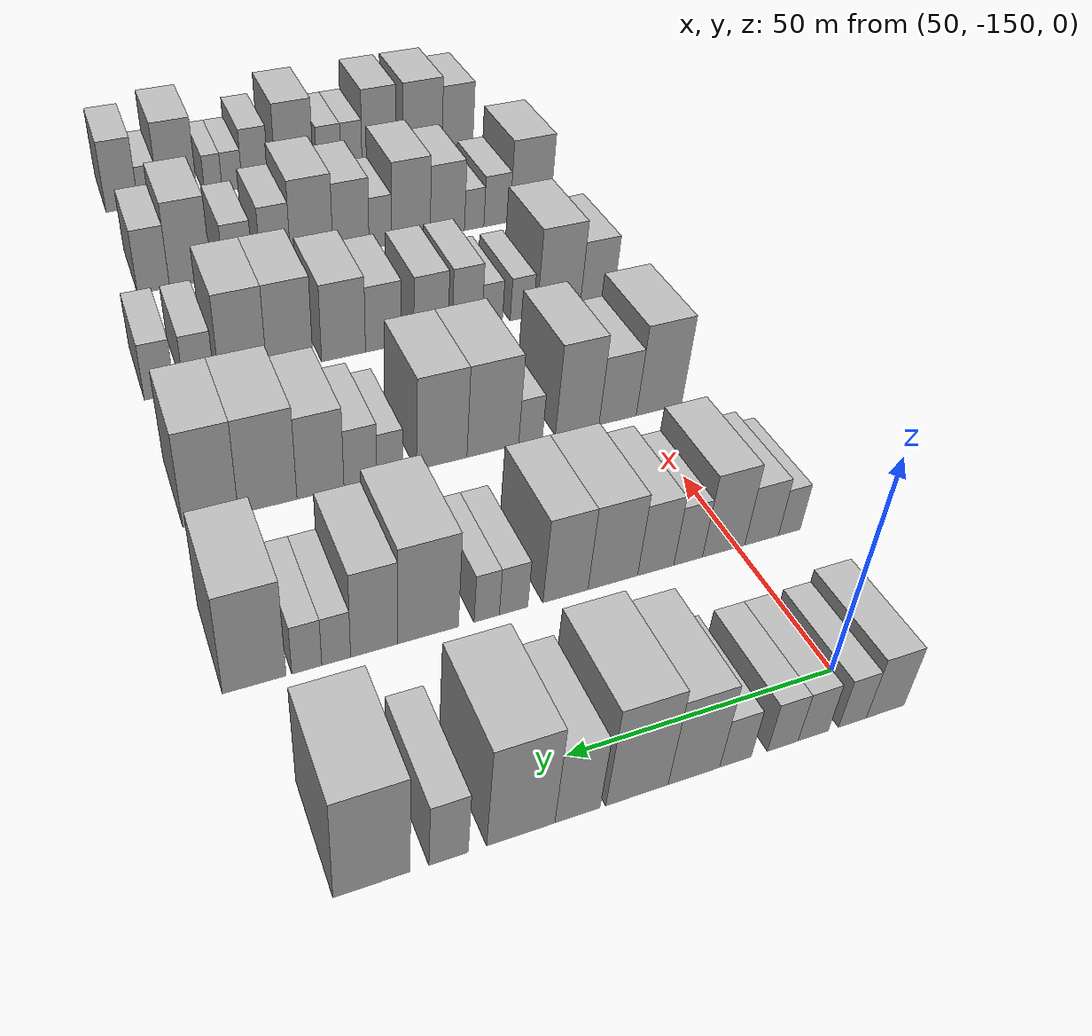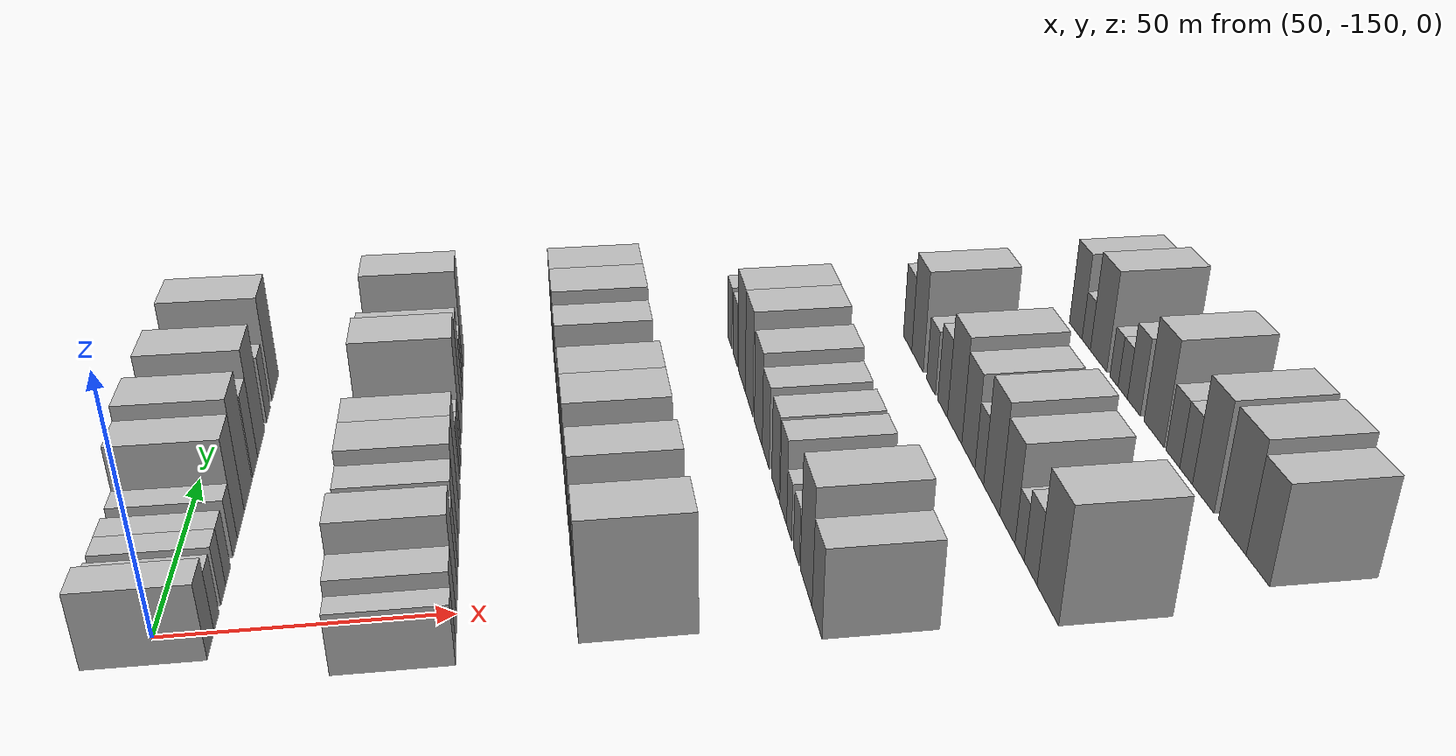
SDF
<sdf version="1.6">
 <world name="default">
  <model name="building_53">
   <static>1</static>
   <pose>50.0000 -153.5577 0 0.000000 0.000000 0.000000</pose>
   <link name="link">
    <pose>0 0 7.50 0 0 0</pose>
    <collision name="collision"><geometry><box><size>20.0000 7.4390 15.0000</size></box></geometry></collision>
    <visual name="visual">
     <cast_shadows>0</cast_shadows>
     <geometry><box><size>20.0000 7.4390 15.0000</size></box></geometry>
     <material>
      <script>
       <uri>model://HANNAS_wall/materials/scripts</uri>
       <uri>model://HANNAS_wall/materials/textures</uri>
       <name>vrc/HANNAS_wall</name>
      </script>
     </material>
    </visual>
   </link>
  </model>
  <model name="building_54">
   <static>1</static>
   <pose>50.0000 -147.1237 0 0.000000 0.000000 0.000000</pose>
   <link name="link">
    <pose>0 0 6.00 0 0 0</pose>
    <collision name="collision"><geometry><box><size>20.0000 5.4288 12.0000</size></box></geometry></collision>
    <visual name="visual">
     <cast_shadows>0</cast_shadows>
     <geometry><box><size>20.0000 5.4288 12.0000</size></box></geometry>
     <material>
      <script>
       <uri>model://HANNAS_wall/materials/scripts</uri>
       <uri>model://HANNAS_wall/materials/textures</uri>
       <name>vrc/HANNAS_wall</name>
      </script>
     </material>
    </visual>
   </link>
  </model>
  <model name="building_55">
   <static>1</static>
   <pose>50.0000 -139.5434 0 0.000000 0.000000 0.000000</pose>
   <link name="link">
    <pose>0 0 6.00 0 0 0</pose>
    <collision name="collision"><geometry><box><size>20.0000 5.7318 12.0000</size></box></geometry></collision>
    <visual name="visual">
     <cast_shadows>0</cast_shadows>
     <geometry><box><size>20.0000 5.7318 12.0000</size></box></geometry>
     <material>
      <script>
       <uri>model://HANNAS_wall/materials/scripts</uri>
       <uri>model://HANNAS_wall/materials/textures</uri>
       <name>vrc/HANNAS_wall</name>
      </script>
     </material>
    </visual>
   </link>
  </model>
  <model name="building_56">
   <static>1</static>
   <pose>50.0000 -133.7722 0 0.000000 0.000000 0.000000</pose>
   <link name="link">
    <pose>0 0 6.00 0 0 0</pose>
    <collision name="collision"><geometry><box><size>20.0000 5.8106 12.0000</size></box></geometry></collision>
    <visual name="visual">
     <cast_shadows>0</cast_shadows>
     <geometry><box><size>20.0000 5.8106 12.0000</size></box></geometry>
     <material>
      <script>
       <uri>model://HANNAS_wall/materials/scripts</uri>
       <uri>model://HANNAS_wall/materials/textures</uri>
       <name>vrc/HANNAS_wall</name>
      </script>
     </material>
    </visual>
   </link>
  </model>
  <model name="building_57">
   <static>1</static>
   <pose>50.0000 -124.9748 0 0.000000 0.000000 0.000000</pose>
   <link name="link">
    <pose>0 0 6.00 0 0 0</pose>
    <collision name="collision"><geometry><box><size>20.0000 5.7843 12.0000</size></box></geometry></collision>
    <visual name="visual">
     <cast_shadows>0</cast_shadows>
     <geometry><box><size>20.0000 5.7843 12.0000</size></box></geometry>
     <material>
      <script>
       <uri>model://HANNAS_wall/materials/scripts</uri>
       <uri>model://HANNAS_wall/materials/textures</uri>
       <name>vrc/HANNAS_wall</name>
      </script>
     </material>
    </visual>
   </link>
  </model>
  <model name="building_58">
   <static>1</static>
   <pose>50.0000 -117.4279 0 0.000000 0.000000 0.000000</pose>
   <link name="link">
    <pose>0 0 10.50 0 0 0</pose>
    <collision name="collision"><geometry><box><size>20.0000 9.3093 21.0000</size></box></geometry></collision>
    <visual name="visual">
     <cast_shadows>0</cast_shadows>
     <geometry><box><size>20.0000 9.3093 21.0000</size></box></geometry>
     <material>
      <script>
       <uri>model://HANNAS_wall/materials/scripts</uri>
       <uri>model://HANNAS_wall/materials/textures</uri>
       <name>vrc/HANNAS_wall</name>
      </script>
     </material>
    </visual>
   </link>
  </model>
  <model name="building_59">
   <static>1</static>
   <pose>50.0000 -107.3029 0 0.000000 0.000000 0.000000</pose>
   <link name="link">
    <pose>0 0 12.00 0 0 0</pose>
    <collision name="collision"><geometry><box><size>20.0000 10.9407 24.0000</size></box></geometry></collision>
    <visual name="visual">
     <cast_shadows>0</cast_shadows>
     <geometry><box><size>20.0000 10.9407 24.0000</size></box></geometry>
     <material>
      <script>
       <uri>model://HANNAS_wall/materials/scripts</uri>
       <uri>model://HANNAS_wall/materials/textures</uri>
       <name>vrc/HANNAS_wall</name>
      </script>
     </material>
    </visual>
   </link>
  </model>
  <model name="building_60">
   <static>1</static>
   <pose>50.0000 -96.9875 0 0.000000 0.000000 0.000000</pose>
   <link name="link">
    <pose>0 0 9.00 0 0 0</pose>
    <collision name="collision"><geometry><box><size>20.0000 7.6901 18.0000</size></box></geometry></collision>
    <visual name="visual">
     <cast_shadows>0</cast_shadows>
     <geometry><box><size>20.0000 7.6901 18.0000</size></box></geometry>
     <material>
      <script>
       <uri>model://HANNAS_wall/materials/scripts</uri>
       <uri>model://HANNAS_wall/materials/textures</uri>
       <name>vrc/HANNAS_wall</name>
      </script>
     </material>
    </visual>
   </link>
  </model>
  <model name="building_61">
   <static>1</static>
   <pose>50.0000 -87.4799 0 0.000000 0.000000 0.000000</pose>
   <link name="link">
    <pose>0 0 12.00 0 0 0</pose>
    <collision name="collision"><geometry><box><size>20.0000 11.3251 24.0000</size></box></geometry></collision>
    <visual name="visual">
     <cast_shadows>0</cast_shadows>
     <geometry><box><size>20.0000 11.3251 24.0000</size></box></geometry>
     <material>
      <script>
       <uri>model://HANNAS_wall/materials/scripts</uri>
       <uri>model://HANNAS_wall/materials/textures</uri>
       <name>vrc/HANNAS_wall</name>
      </script>
     </material>
    </visual>
   </link>
  </model>
  <model name="building_62">
   <static>1</static>
   <pose>50.0000 -75.6643 0 0.000000 0.000000 0.000000</pose>
   <link name="link">
    <pose>0 0 7.50 0 0 0</pose>
    <collision name="collision"><geometry><box><size>20.0000 6.3062 15.0000</size></box></geometry></collision>
    <visual name="visual">
     <cast_shadows>0</cast_shadows>
     <geometry><box><size>20.0000 6.3062 15.0000</size></box></geometry>
     <material>
      <script>
       <uri>model://HANNAS_wall/materials/scripts</uri>
       <uri>model://HANNAS_wall/materials/textures</uri>
       <name>vrc/HANNAS_wall</name>
      </script>
     </material>
    </visual>
   </link>
  </model>
  <model name="building_63">
   <static>1</static>
   <pose>50.0000 -63.5350 0 0.000000 0.000000 0.000000</pose>
   <link name="link">
    <pose>0 0 12.00 0 0 0</pose>
    <collision name="collision"><geometry><box><size>20.0000 11.9523 24.0000</size></box></geometry></collision>
    <visual name="visual">
     <cast_shadows>0</cast_shadows>
     <geometry><box><size>20.0000 11.9523 24.0000</size></box></geometry>
     <material>
      <script>
       <uri>model://HANNAS_wall/materials/scripts</uri>
       <uri>model://HANNAS_wall/materials/textures</uri>
       <name>vrc/HANNAS_wall</name>
      </script>
     </material>
    </visual>
   </link>
  </model>
  <model name="building_192">
   <static>1</static>
   <pose>90.0000 -161.4679 0 0.000000 0.000000 0.000000</pose>
   <link name="link">
    <pose>0 0 6.00 0 0 0</pose>
    <collision name="collision"><geometry><box><size>20.0000 4.8587 12.0000</size></box></geometry></collision>
    <visual name="visual">
     <cast_shadows>0</cast_shadows>
     <geometry><box><size>20.0000 4.8587 12.0000</size></box></geometry>
     <material>
      <script>
       <uri>model://HANNAS_wall/materials/scripts</uri>
       <uri>model://HANNAS_wall/materials/textures</uri>
       <name>vrc/HANNAS_wall</name>
      </script>
     </material>
    </visual>
   </link>
  </model>
  <model name="building_193">
   <static>1</static>
   <pose>90.0000 -155.3239 0 0.000000 0.000000 0.000000</pose>
   <link name="link">
    <pose>0 0 7.50 0 0 0</pose>
    <collision name="collision"><geometry><box><size>20.0000 7.4293 15.0000</size></box></geometry></collision>
    <visual name="visual">
     <cast_shadows>0</cast_shadows>
     <geometry><box><size>20.0000 7.4293 15.0000</size></box></geometry>
     <material>
      <script>
       <uri>model://HANNAS_wall/materials/scripts</uri>
       <uri>model://HANNAS_wall/materials/textures</uri>
       <name>vrc/HANNAS_wall</name>
      </script>
     </material>
    </visual>
   </link>
  </model>
  <model name="building_194">
   <static>1</static>
   <pose>90.0000 -147.0304 0 0.000000 0.000000 0.000000</pose>
   <link name="link">
    <pose>0 0 10.50 0 0 0</pose>
    <collision name="collision"><geometry><box><size>20.0000 9.1576 21.0000</size></box></geometry></collision>
    <visual name="visual">
     <cast_shadows>0</cast_shadows>
     <geometry><box><size>20.0000 9.1576 21.0000</size></box></geometry>
     <material>
      <script>
       <uri>model://HANNAS_wall/materials/scripts</uri>
       <uri>model://HANNAS_wall/materials/textures</uri>
       <name>vrc/HANNAS_wall</name>
      </script>
     </material>
    </visual>
   </link>
  </model>
  <model name="building_195">
   <static>1</static>
   <pose>90.0000 -139.3955 0 0.000000 0.000000 0.000000</pose>
   <link name="link">
    <pose>0 0 7.50 0 0 0</pose>
    <collision name="collision"><geometry><box><size>20.0000 6.1121 15.0000</size></box></geometry></collision>
    <visual name="visual">
     <cast_shadows>0</cast_shadows>
     <geometry><box><size>20.0000 6.1121 15.0000</size></box></geometry>
     <material>
      <script>
       <uri>model://HANNAS_wall/materials/scripts</uri>
       <uri>model://HANNAS_wall/materials/textures</uri>
       <name>vrc/HANNAS_wall</name>
      </script>
     </material>
    </visual>
   </link>
  </model>
  <model name="building_196">
   <static>1</static>
   <pose>90.0000 -132.5484 0 0.000000 0.000000 0.000000</pose>
   <link name="link">
    <pose>0 0 9.00 0 0 0</pose>
    <collision name="collision"><geometry><box><size>20.0000 7.5821 18.0000</size></box></geometry></collision>
    <visual name="visual">
     <cast_shadows>0</cast_shadows>
     <geometry><box><size>20.0000 7.5821 18.0000</size></box></geometry>
     <material>
      <script>
       <uri>model://HANNAS_wall/materials/scripts</uri>
       <uri>model://HANNAS_wall/materials/textures</uri>
       <name>vrc/HANNAS_wall</name>
      </script>
     </material>
    </visual>
   </link>
  </model>
  <model name="building_197">
   <static>1</static>
   <pose>90.0000 -123.6649 0 0.000000 0.000000 0.000000</pose>
   <link name="link">
    <pose>0 0 10.50 0 0 0</pose>
    <collision name="collision"><geometry><box><size>20.0000 10.1850 21.0000</size></box></geometry></collision>
    <visual name="visual">
     <cast_shadows>0</cast_shadows>
     <geometry><box><size>20.0000 10.1850 21.0000</size></box></geometry>
     <material>
      <script>
       <uri>model://HANNAS_wall/materials/scripts</uri>
       <uri>model://HANNAS_wall/materials/textures</uri>
       <name>vrc/HANNAS_wall</name>
      </script>
     </material>
    </visual>
   </link>
  </model>
  <model name="building_198">
   <static>1</static>
   <pose>90.0000 -114.0429 0 0.000000 0.000000 0.000000</pose>
   <link name="link">
    <pose>0 0 10.50 0 0 0</pose>
    <collision name="collision"><geometry><box><size>20.0000 9.0590 21.0000</size></box></geometry></collision>
    <visual name="visual">
     <cast_shadows>0</cast_shadows>
     <geometry><box><size>20.0000 9.0590 21.0000</size></box></geometry>
     <material>
      <script>
       <uri>model://HANNAS_wall/materials/scripts</uri>
       <uri>model://HANNAS_wall/materials/textures</uri>
       <name>vrc/HANNAS_wall</name>
      </script>
     </material>
    </visual>
   </link>
  </model>
  <model name="building_199">
   <static>1</static>
   <pose>90.0000 -103.7242 0 0.000000 0.000000 0.000000</pose>
   <link name="link">
    <pose>0 0 6.00 0 0 0</pose>
    <collision name="collision"><geometry><box><size>20.0000 5.5783 12.0000</size></box></geometry></collision>
    <visual name="visual">
     <cast_shadows>0</cast_shadows>
     <geometry><box><size>20.0000 5.5783 12.0000</size></box></geometry>
     <material>
      <script>
       <uri>model://HANNAS_wall/materials/scripts</uri>
       <uri>model://HANNAS_wall/materials/textures</uri>
       <name>vrc/HANNAS_wall</name>
      </script>
     </material>
    </visual>
   </link>
  </model>
  <model name="building_200">
   <static>1</static>
   <pose>90.0000 -98.4985 0 0.000000 0.000000 0.000000</pose>
   <link name="link">
    <pose>0 0 6.00 0 0 0</pose>
    <collision name="collision"><geometry><box><size>20.0000 4.8731 12.0000</size></box></geometry></collision>
    <visual name="visual">
     <cast_shadows>0</cast_shadows>
     <geometry><box><size>20.0000 4.8731 12.0000</size></box></geometry>
     <material>
      <script>
       <uri>model://HANNAS_wall/materials/scripts</uri>
       <uri>model://HANNAS_wall/materials/textures</uri>
       <name>vrc/HANNAS_wall</name>
      </script>
     </material>
    </visual>
   </link>
  </model>
  <model name="building_201">
   <static>1</static>
   <pose>90.0000 -87.3394 0 0.000000 0.000000 0.000000</pose>
   <link name="link">
    <pose>0 0 12.00 0 0 0</pose>
    <collision name="collision"><geometry><box><size>20.0000 11.4452 24.0000</size></box></geometry></collision>
    <visual name="visual">
     <cast_shadows>0</cast_shadows>
     <geometry><box><size>20.0000 11.4452 24.0000</size></box></geometry>
     <material>
      <script>
       <uri>model://HANNAS_wall/materials/scripts</uri>
       <uri>model://HANNAS_wall/materials/textures</uri>
       <name>vrc/HANNAS_wall</name>
      </script>
     </material>
    </visual>
   </link>
  </model>
  <model name="building_202">
   <static>1</static>
   <pose>90.0000 -77.2960 0 0.000000 0.000000 0.000000</pose>
   <link name="link">
    <pose>0 0 10.50 0 0 0</pose>
    <collision name="collision"><geometry><box><size>20.0000 8.6415 21.0000</size></box></geometry></collision>
    <visual name="visual">
     <cast_shadows>0</cast_shadows>
     <geometry><box><size>20.0000 8.6415 21.0000</size></box></geometry>
     <material>
      <script>
       <uri>model://HANNAS_wall/materials/scripts</uri>
       <uri>model://HANNAS_wall/materials/textures</uri>
       <name>vrc/HANNAS_wall</name>
      </script>
     </material>
    </visual>
   </link>
  </model>
  <model name="building_203">
   <static>1</static>
   <pose>90.0000 -70.3737 0 0.000000 0.000000 0.000000</pose>
   <link name="link">
    <pose>0 0 6.00 0 0 0</pose>
    <collision name="collision"><geometry><box><size>20.0000 5.2032 12.0000</size></box></geometry></collision>
    <visual name="visual">
     <cast_shadows>0</cast_shadows>
     <geometry><box><size>20.0000 5.2032 12.0000</size></box></geometry>
     <material>
      <script>
       <uri>model://HANNAS_wall/materials/scripts</uri>
       <uri>model://HANNAS_wall/materials/textures</uri>
       <name>vrc/HANNAS_wall</name>
      </script>
     </material>
    </visual>
   </link>
  </model>
  <model name="building_204">
   <static>1</static>
   <pose>90.0000 -65.0941 0 0.000000 0.000000 0.000000</pose>
   <link name="link">
    <pose>0 0 6.00 0 0 0</pose>
    <collision name="collision"><geometry><box><size>20.0000 5.3561 12.0000</size></box></geometry></collision>
    <visual name="visual">
     <cast_shadows>0</cast_shadows>
     <geometry><box><size>20.0000 5.3561 12.0000</size></box></geometry>
     <material>
      <script>
       <uri>model://HANNAS_wall/materials/scripts</uri>
       <uri>model://HANNAS_wall/materials/textures</uri>
       <name>vrc/HANNAS_wall</name>
      </script>
     </material>
    </visual>
   </link>
  </model>
  <model name="building_205">
   <static>1</static>
   <pose>90.0000 -55.8504 0 0.000000 0.000000 0.000000</pose>
   <link name="link">
    <pose>0 0 12.00 0 0 0</pose>
    <collision name="collision"><geometry><box><size>20.0000 11.1311 24.0000</size></box></geometry></collision>
    <visual name="visual">
     <cast_shadows>0</cast_shadows>
     <geometry><box><size>20.0000 11.1311 24.0000</size></box></geometry>
     <material>
      <script>
       <uri>model://HANNAS_wall/materials/scripts</uri>
       <uri>model://HANNAS_wall/materials/textures</uri>
       <name>vrc/HANNAS_wall</name>
      </script>
     </material>
    </visual>
   </link>
  </model>
  <model name="building_327">
   <static>1</static>
   <pose>130.0000 -155.2935 0 0.000000 0.000000 0.000000</pose>
   <link name="link">
    <pose>0 0 12.00 0 0 0</pose>
    <collision name="collision"><geometry><box><size>20.0000 10.9934 24.0000</size></box></geometry></collision>
    <visual name="visual">
     <cast_shadows>0</cast_shadows>
     <geometry><box><size>20.0000 10.9934 24.0000</size></box></geometry>
     <material>
      <script>
       <uri>model://HANNAS_wall/materials/scripts</uri>
       <uri>model://HANNAS_wall/materials/textures</uri>
       <name>vrc/HANNAS_wall</name>
      </script>
     </material>
    </visual>
   </link>
  </model>
  <model name="building_328">
   <static>1</static>
   <pose>130.0000 -145.3778 0 0.000000 0.000000 0.000000</pose>
   <link name="link">
    <pose>0 0 9.00 0 0 0</pose>
    <collision name="collision"><geometry><box><size>20.0000 8.8381 18.0000</size></box></geometry></collision>
    <visual name="visual">
     <cast_shadows>0</cast_shadows>
     <geometry><box><size>20.0000 8.8381 18.0000</size></box></geometry>
     <material>
      <script>
       <uri>model://HANNAS_wall/materials/scripts</uri>
       <uri>model://HANNAS_wall/materials/textures</uri>
       <name>vrc/HANNAS_wall</name>
      </script>
     </material>
    </visual>
   </link>
  </model>
  <model name="building_329">
   <static>1</static>
   <pose>130.0000 -135.8644 0 0.000000 0.000000 0.000000</pose>
   <link name="link">
    <pose>0 0 12.00 0 0 0</pose>
    <collision name="collision"><geometry><box><size>20.0000 10.1886 24.0000</size></box></geometry></collision>
    <visual name="visual">
     <cast_shadows>0</cast_shadows>
     <geometry><box><size>20.0000 10.1886 24.0000</size></box></geometry>
     <material>
      <script>
       <uri>model://HANNAS_wall/materials/scripts</uri>
       <uri>model://HANNAS_wall/materials/textures</uri>
       <name>vrc/HANNAS_wall</name>
      </script>
     </material>
    </visual>
   </link>
  </model>
  <model name="building_330">
   <static>1</static>
   <pose>130.0000 -125.0587 0 0.000000 0.000000 0.000000</pose>
   <link name="link">
    <pose>0 0 6.00 0 0 0</pose>
    <collision name="collision"><geometry><box><size>20.0000 5.4227 12.0000</size></box></geometry></collision>
    <visual name="visual">
     <cast_shadows>0</cast_shadows>
     <geometry><box><size>20.0000 5.4227 12.0000</size></box></geometry>
     <material>
      <script>
       <uri>model://HANNAS_wall/materials/scripts</uri>
       <uri>model://HANNAS_wall/materials/textures</uri>
       <name>vrc/HANNAS_wall</name>
      </script>
     </material>
    </visual>
   </link>
  </model>
  <model name="building_331">
   <static>1</static>
   <pose>130.0000 -116.5566 0 0.000000 0.000000 0.000000</pose>
   <link name="link">
    <pose>0 0 12.00 0 0 0</pose>
    <collision name="collision"><geometry><box><size>20.0000 11.5816 24.0000</size></box></geometry></collision>
    <visual name="visual">
     <cast_shadows>0</cast_shadows>
     <geometry><box><size>20.0000 11.5816 24.0000</size></box></geometry>
     <material>
      <script>
       <uri>model://HANNAS_wall/materials/scripts</uri>
       <uri>model://HANNAS_wall/materials/textures</uri>
       <name>vrc/HANNAS_wall</name>
      </script>
     </material>
    </visual>
   </link>
  </model>
  <model name="building_332">
   <static>1</static>
   <pose>130.0000 -105.2314 0 0.000000 0.000000 0.000000</pose>
   <link name="link">
    <pose>0 0 12.00 0 0 0</pose>
    <collision name="collision"><geometry><box><size>20.0000 11.0688 24.0000</size></box></geometry></collision>
    <visual name="visual">
     <cast_shadows>0</cast_shadows>
     <geometry><box><size>20.0000 11.0688 24.0000</size></box></geometry>
     <material>
      <script>
       <uri>model://HANNAS_wall/materials/scripts</uri>
       <uri>model://HANNAS_wall/materials/textures</uri>
       <name>vrc/HANNAS_wall</name>
      </script>
     </material>
    </visual>
   </link>
  </model>
  <model name="building_333">
   <static>1</static>
   <pose>130.0000 -93.9597 0 0.000000 0.000000 0.000000</pose>
   <link name="link">
    <pose>0 0 6.00 0 0 0</pose>
    <collision name="collision"><geometry><box><size>20.0000 5.4746 12.0000</size></box></geometry></collision>
    <visual name="visual">
     <cast_shadows>0</cast_shadows>
     <geometry><box><size>20.0000 5.4746 12.0000</size></box></geometry>
     <material>
      <script>
       <uri>model://HANNAS_wall/materials/scripts</uri>
       <uri>model://HANNAS_wall/materials/textures</uri>
       <name>vrc/HANNAS_wall</name>
      </script>
     </material>
    </visual>
   </link>
  </model>
  <model name="building_334">
   <static>1</static>
   <pose>130.0000 -87.7505 0 0.000000 0.000000 0.000000</pose>
   <link name="link">
    <pose>0 0 7.50 0 0 0</pose>
    <collision name="collision"><geometry><box><size>20.0000 6.9438 15.0000</size></box></geometry></collision>
    <visual name="visual">
     <cast_shadows>0</cast_shadows>
     <geometry><box><size>20.0000 6.9438 15.0000</size></box></geometry>
     <material>
      <script>
       <uri>model://HANNAS_wall/materials/scripts</uri>
       <uri>model://HANNAS_wall/materials/textures</uri>
       <name>vrc/HANNAS_wall</name>
      </script>
     </material>
    </visual>
   </link>
  </model>
  <model name="building_335">
   <static>1</static>
   <pose>130.0000 -79.4132 0 0.000000 0.000000 0.000000</pose>
   <link name="link">
    <pose>0 0 10.50 0 0 0</pose>
    <collision name="collision"><geometry><box><size>20.0000 9.7308 21.0000</size></box></geometry></collision>
    <visual name="visual">
     <cast_shadows>0</cast_shadows>
     <geometry><box><size>20.0000 9.7308 21.0000</size></box></geometry>
     <material>
      <script>
       <uri>model://HANNAS_wall/materials/scripts</uri>
       <uri>model://HANNAS_wall/materials/textures</uri>
       <name>vrc/HANNAS_wall</name>
      </script>
     </material>
    </visual>
   </link>
  </model>
  <model name="building_336">
   <static>1</static>
   <pose>130.0000 -68.6014 0 0.000000 0.000000 0.000000</pose>
   <link name="link">
    <pose>0 0 12.00 0 0 0</pose>
    <collision name="collision"><geometry><box><size>20.0000 11.8928 24.0000</size></box></geometry></collision>
    <visual name="visual">
     <cast_shadows>0</cast_shadows>
     <geometry><box><size>20.0000 11.8928 24.0000</size></box></geometry>
     <material>
      <script>
       <uri>model://HANNAS_wall/materials/scripts</uri>
       <uri>model://HANNAS_wall/materials/textures</uri>
       <name>vrc/HANNAS_wall</name>
      </script>
     </material>
    </visual>
   </link>
  </model>
  <model name="building_337">
   <static>1</static>
   <pose>130.0000 -57.1576 0 0.000000 0.000000 0.000000</pose>
   <link name="link">
    <pose>0 0 12.00 0 0 0</pose>
    <collision name="collision"><geometry><box><size>20.0000 10.9949 24.0000</size></box></geometry></collision>
    <visual name="visual">
     <cast_shadows>0</cast_shadows>
     <geometry><box><size>20.0000 10.9949 24.0000</size></box></geometry>
     <material>
      <script>
       <uri>model://HANNAS_wall/materials/scripts</uri>
       <uri>model://HANNAS_wall/materials/textures</uri>
       <name>vrc/HANNAS_wall</name>
      </script>
     </material>
    </visual>
   </link>
  </model>
  <model name="building_448">
   <static>1</static>
   <pose>170.0000 -160.5381 0 0.000000 0.000000 0.000000</pose>
   <link name="link">
    <pose>0 0 9.00 0 0 0</pose>
    <collision name="collision"><geometry><box><size>20.0000 8.9201 18.0000</size></box></geometry></collision>
    <visual name="visual">
     <cast_shadows>0</cast_shadows>
     <geometry><box><size>20.0000 8.9201 18.0000</size></box></geometry>
     <material>
      <script>
       <uri>model://HANNAS_wall/materials/scripts</uri>
       <uri>model://HANNAS_wall/materials/textures</uri>
       <name>vrc/HANNAS_wall</name>
      </script>
     </material>
    </visual>
   </link>
  </model>
  <model name="building_449">
   <static>1</static>
   <pose>170.0000 -150.4139 0 0.000000 0.000000 0.000000</pose>
   <link name="link">
    <pose>0 0 12.00 0 0 0</pose>
    <collision name="collision"><geometry><box><size>20.0000 11.3284 24.0000</size></box></geometry></collision>
    <visual name="visual">
     <cast_shadows>0</cast_shadows>
     <geometry><box><size>20.0000 11.3284 24.0000</size></box></geometry>
     <material>
      <script>
       <uri>model://HANNAS_wall/materials/scripts</uri>
       <uri>model://HANNAS_wall/materials/textures</uri>
       <name>vrc/HANNAS_wall</name>
      </script>
     </material>
    </visual>
   </link>
  </model>
  <model name="building_450">
   <static>1</static>
   <pose>170.0000 -140.7817 0 0.000000 0.000000 0.000000</pose>
   <link name="link">
    <pose>0 0 6.00 0 0 0</pose>
    <collision name="collision"><geometry><box><size>20.0000 5.9359 12.0000</size></box></geometry></collision>
    <visual name="visual">
     <cast_shadows>0</cast_shadows>
     <geometry><box><size>20.0000 5.9359 12.0000</size></box></geometry>
     <material>
      <script>
       <uri>model://HANNAS_wall/materials/scripts</uri>
       <uri>model://HANNAS_wall/materials/textures</uri>
       <name>vrc/HANNAS_wall</name>
      </script>
     </material>
    </visual>
   </link>
  </model>
  <model name="building_451">
   <static>1</static>
   <pose>170.0000 -133.2052 0 0.000000 0.000000 0.000000</pose>
   <link name="link">
    <pose>0 0 6.00 0 0 0</pose>
    <collision name="collision"><geometry><box><size>20.0000 5.2170 12.0000</size></box></geometry></collision>
    <visual name="visual">
     <cast_shadows>0</cast_shadows>
     <geometry><box><size>20.0000 5.2170 12.0000</size></box></geometry>
     <material>
      <script>
       <uri>model://HANNAS_wall/materials/scripts</uri>
       <uri>model://HANNAS_wall/materials/textures</uri>
       <name>vrc/HANNAS_wall</name>
      </script>
     </material>
    </visual>
   </link>
  </model>
  <model name="building_452">
   <static>1</static>
   <pose>170.0000 -126.8496 0 0.000000 0.000000 0.000000</pose>
   <link name="link">
    <pose>0 0 9.00 0 0 0</pose>
    <collision name="collision"><geometry><box><size>20.0000 7.4944 18.0000</size></box></geometry></collision>
    <visual name="visual">
     <cast_shadows>0</cast_shadows>
     <geometry><box><size>20.0000 7.4944 18.0000</size></box></geometry>
     <material>
      <script>
       <uri>model://HANNAS_wall/materials/scripts</uri>
       <uri>model://HANNAS_wall/materials/textures</uri>
       <name>vrc/HANNAS_wall</name>
      </script>
     </material>
    </visual>
   </link>
  </model>
  <model name="building_453">
   <static>1</static>
   <pose>170.0000 -117.8507 0 0.000000 0.000000 0.000000</pose>
   <link name="link">
    <pose>0 0 9.00 0 0 0</pose>
    <collision name="collision"><geometry><box><size>20.0000 8.5032 18.0000</size></box></geometry></collision>
    <visual name="visual">
     <cast_shadows>0</cast_shadows>
     <geometry><box><size>20.0000 8.5032 18.0000</size></box></geometry>
     <material>
      <script>
       <uri>model://HANNAS_wall/materials/scripts</uri>
       <uri>model://HANNAS_wall/materials/textures</uri>
       <name>vrc/HANNAS_wall</name>
      </script>
     </material>
    </visual>
   </link>
  </model>
  <model name="building_454">
   <static>1</static>
   <pose>170.0000 -106.2595 0 0.000000 0.000000 0.000000</pose>
   <link name="link">
    <pose>0 0 9.00 0 0 0</pose>
    <collision name="collision"><geometry><box><size>20.0000 8.6792 18.0000</size></box></geometry></collision>
    <visual name="visual">
     <cast_shadows>0</cast_shadows>
     <geometry><box><size>20.0000 8.6792 18.0000</size></box></geometry>
     <material>
      <script>
       <uri>model://HANNAS_wall/materials/scripts</uri>
       <uri>model://HANNAS_wall/materials/textures</uri>
       <name>vrc/HANNAS_wall</name>
      </script>
     </material>
    </visual>
   </link>
  </model>
  <model name="building_455">
   <static>1</static>
   <pose>170.0000 -96.7025 0 0.000000 0.000000 0.000000</pose>
   <link name="link">
    <pose>0 0 10.50 0 0 0</pose>
    <collision name="collision"><geometry><box><size>20.0000 10.4347 21.0000</size></box></geometry></collision>
    <visual name="visual">
     <cast_shadows>0</cast_shadows>
     <geometry><box><size>20.0000 10.4347 21.0000</size></box></geometry>
     <material>
      <script>
       <uri>model://HANNAS_wall/materials/scripts</uri>
       <uri>model://HANNAS_wall/materials/textures</uri>
       <name>vrc/HANNAS_wall</name>
      </script>
     </material>
    </visual>
   </link>
  </model>
  <model name="building_456">
   <static>1</static>
   <pose>170.0000 -84.1325 0 0.000000 0.000000 0.000000</pose>
   <link name="link">
    <pose>0 0 12.00 0 0 0</pose>
    <collision name="collision"><geometry><box><size>20.0000 10.7053 24.0000</size></box></geometry></collision>
    <visual name="visual">
     <cast_shadows>0</cast_shadows>
     <geometry><box><size>20.0000 10.7053 24.0000</size></box></geometry>
     <material>
      <script>
       <uri>model://HANNAS_wall/materials/scripts</uri>
       <uri>model://HANNAS_wall/materials/textures</uri>
       <name>vrc/HANNAS_wall</name>
      </script>
     </material>
    </visual>
   </link>
  </model>
  <model name="building_457">
   <static>1</static>
   <pose>170.0000 -73.3714 0 0.000000 0.000000 0.000000</pose>
   <link name="link">
    <pose>0 0 12.00 0 0 0</pose>
    <collision name="collision"><geometry><box><size>20.0000 10.8168 24.0000</size></box></geometry></collision>
    <visual name="visual">
     <cast_shadows>0</cast_shadows>
     <geometry><box><size>20.0000 10.8168 24.0000</size></box></geometry>
     <material>
      <script>
       <uri>model://HANNAS_wall/materials/scripts</uri>
       <uri>model://HANNAS_wall/materials/textures</uri>
       <name>vrc/HANNAS_wall</name>
      </script>
     </material>
    </visual>
   </link>
  </model>
  <model name="building_458">
   <static>1</static>
   <pose>170.0000 -63.5251 0 0.000000 0.000000 0.000000</pose>
   <link name="link">
    <pose>0 0 7.50 0 0 0</pose>
    <collision name="collision"><geometry><box><size>20.0000 6.8759 15.0000</size></box></geometry></collision>
    <visual name="visual">
     <cast_shadows>0</cast_shadows>
     <geometry><box><size>20.0000 6.8759 15.0000</size></box></geometry>
     <material>
      <script>
       <uri>model://HANNAS_wall/materials/scripts</uri>
       <uri>model://HANNAS_wall/materials/textures</uri>
       <name>vrc/HANNAS_wall</name>
      </script>
     </material>
    </visual>
   </link>
  </model>
  <model name="building_459">
   <static>1</static>
   <pose>170.0000 -54.7074 0 0.000000 0.000000 0.000000</pose>
   <link name="link">
    <pose>0 0 7.50 0 0 0</pose>
    <collision name="collision"><geometry><box><size>20.0000 6.7594 15.0000</size></box></geometry></collision>
    <visual name="visual">
     <cast_shadows>0</cast_shadows>
     <geometry><box><size>20.0000 6.7594 15.0000</size></box></geometry>
     <material>
      <script>
       <uri>model://HANNAS_wall/materials/scripts</uri>
       <uri>model://HANNAS_wall/materials/textures</uri>
       <name>vrc/HANNAS_wall</name>
      </script>
     </material>
    </visual>
   </link>
  </model>
  <model name="building_576">
   <static>1</static>
   <pose>210.0000 -160.8794 0 0.000000 0.000000 0.000000</pose>
   <link name="link">
    <pose>0 0 12.00 0 0 0</pose>
    <collision name="collision"><geometry><box><size>20.0000 11.6270 24.0000</size></box></geometry></collision>
    <visual name="visual">
     <cast_shadows>0</cast_shadows>
     <geometry><box><size>20.0000 11.6270 24.0000</size></box></geometry>
     <material>
      <script>
       <uri>model://HANNAS_wall/materials/scripts</uri>
       <uri>model://HANNAS_wall/materials/textures</uri>
       <name>vrc/HANNAS_wall</name>
      </script>
     </material>
    </visual>
   </link>
  </model>
  <model name="building_577">
   <static>1</static>
   <pose>210.0000 -151.3791 0 0.000000 0.000000 0.000000</pose>
   <link name="link">
    <pose>0 0 7.50 0 0 0</pose>
    <collision name="collision"><geometry><box><size>20.0000 7.3735 15.0000</size></box></geometry></collision>
    <visual name="visual">
     <cast_shadows>0</cast_shadows>
     <geometry><box><size>20.0000 7.3735 15.0000</size></box></geometry>
     <material>
      <script>
       <uri>model://HANNAS_wall/materials/scripts</uri>
       <uri>model://HANNAS_wall/materials/textures</uri>
       <name>vrc/HANNAS_wall</name>
      </script>
     </material>
    </visual>
   </link>
  </model>
  <model name="building_578">
   <static>1</static>
   <pose>210.0000 -144.9520 0 0.000000 0.000000 0.000000</pose>
   <link name="link">
    <pose>0 0 6.00 0 0 0</pose>
    <collision name="collision"><geometry><box><size>20.0000 5.4808 12.0000</size></box></geometry></collision>
    <visual name="visual">
     <cast_shadows>0</cast_shadows>
     <geometry><box><size>20.0000 5.4808 12.0000</size></box></geometry>
     <material>
      <script>
       <uri>model://HANNAS_wall/materials/scripts</uri>
       <uri>model://HANNAS_wall/materials/textures</uri>
       <name>vrc/HANNAS_wall</name>
      </script>
     </material>
    </visual>
   </link>
  </model>
  <model name="building_579">
   <static>1</static>
   <pose>210.0000 -137.4248 0 0.000000 0.000000 0.000000</pose>
   <link name="link">
    <pose>0 0 10.50 0 0 0</pose>
    <collision name="collision"><geometry><box><size>20.0000 9.5737 21.0000</size></box></geometry></collision>
    <visual name="visual">
     <cast_shadows>0</cast_shadows>
     <geometry><box><size>20.0000 9.5737 21.0000</size></box></geometry>
     <material>
      <script>
       <uri>model://HANNAS_wall/materials/scripts</uri>
       <uri>model://HANNAS_wall/materials/textures</uri>
       <name>vrc/HANNAS_wall</name>
      </script>
     </material>
    </visual>
   </link>
  </model>
  <model name="building_580">
   <static>1</static>
   <pose>210.0000 -127.3440 0 0.000000 0.000000 0.000000</pose>
   <link name="link">
    <pose>0 0 12.00 0 0 0</pose>
    <collision name="collision"><geometry><box><size>20.0000 10.5878 24.0000</size></box></geometry></collision>
    <visual name="visual">
     <cast_shadows>0</cast_shadows>
     <geometry><box><size>20.0000 10.5878 24.0000</size></box></geometry>
     <material>
      <script>
       <uri>model://HANNAS_wall/materials/scripts</uri>
       <uri>model://HANNAS_wall/materials/textures</uri>
       <name>vrc/HANNAS_wall</name>
      </script>
     </material>
    </visual>
   </link>
  </model>
  <model name="building_581">
   <static>1</static>
   <pose>210.0000 -119.0221 0 0.000000 0.000000 0.000000</pose>
   <link name="link">
    <pose>0 0 7.50 0 0 0</pose>
    <collision name="collision"><geometry><box><size>20.0000 6.0561 15.0000</size></box></geometry></collision>
    <visual name="visual">
     <cast_shadows>0</cast_shadows>
     <geometry><box><size>20.0000 6.0561 15.0000</size></box></geometry>
     <material>
      <script>
       <uri>model://HANNAS_wall/materials/scripts</uri>
       <uri>model://HANNAS_wall/materials/textures</uri>
       <name>vrc/HANNAS_wall</name>
      </script>
     </material>
    </visual>
   </link>
  </model>
  <model name="building_582">
   <static>1</static>
   <pose>210.0000 -111.1900 0 0.000000 0.000000 0.000000</pose>
   <link name="link">
    <pose>0 0 10.50 0 0 0</pose>
    <collision name="collision"><geometry><box><size>20.0000 9.6080 21.0000</size></box></geometry></collision>
    <visual name="visual">
     <cast_shadows>0</cast_shadows>
     <geometry><box><size>20.0000 9.6080 21.0000</size></box></geometry>
     <material>
      <script>
       <uri>model://HANNAS_wall/materials/scripts</uri>
       <uri>model://HANNAS_wall/materials/textures</uri>
       <name>vrc/HANNAS_wall</name>
      </script>
     </material>
    </visual>
   </link>
  </model>
  <model name="building_583">
   <static>1</static>
   <pose>210.0000 -100.8554 0 0.000000 0.000000 0.000000</pose>
   <link name="link">
    <pose>0 0 12.00 0 0 0</pose>
    <collision name="collision"><geometry><box><size>20.0000 11.0613 24.0000</size></box></geometry></collision>
    <visual name="visual">
     <cast_shadows>0</cast_shadows>
     <geometry><box><size>20.0000 11.0613 24.0000</size></box></geometry>
     <material>
      <script>
       <uri>model://HANNAS_wall/materials/scripts</uri>
       <uri>model://HANNAS_wall/materials/textures</uri>
       <name>vrc/HANNAS_wall</name>
      </script>
     </material>
    </visual>
   </link>
  </model>
  <model name="building_584">
   <static>1</static>
   <pose>210.0000 -91.4302 0 0.000000 0.000000 0.000000</pose>
   <link name="link">
    <pose>0 0 9.00 0 0 0</pose>
    <collision name="collision"><geometry><box><size>20.0000 7.7893 18.0000</size></box></geometry></collision>
    <visual name="visual">
     <cast_shadows>0</cast_shadows>
     <geometry><box><size>20.0000 7.7893 18.0000</size></box></geometry>
     <material>
      <script>
       <uri>model://HANNAS_wall/materials/scripts</uri>
       <uri>model://HANNAS_wall/materials/textures</uri>
       <name>vrc/HANNAS_wall</name>
      </script>
     </material>
    </visual>
   </link>
  </model>
  <model name="building_585">
   <static>1</static>
   <pose>210.0000 -81.8159 0 0.000000 0.000000 0.000000</pose>
   <link name="link">
    <pose>0 0 7.50 0 0 0</pose>
    <collision name="collision"><geometry><box><size>20.0000 7.4393 15.0000</size></box></geometry></collision>
    <visual name="visual">
     <cast_shadows>0</cast_shadows>
     <geometry><box><size>20.0000 7.4393 15.0000</size></box></geometry>
     <material>
      <script>
       <uri>model://HANNAS_wall/materials/scripts</uri>
       <uri>model://HANNAS_wall/materials/textures</uri>
       <name>vrc/HANNAS_wall</name>
      </script>
     </material>
    </visual>
   </link>
  </model>
  <model name="building_586">
   <static>1</static>
   <pose>210.0000 -69.8882 0 0.000000 0.000000 0.000000</pose>
   <link name="link">
    <pose>0 0 12.00 0 0 0</pose>
    <collision name="collision"><geometry><box><size>20.0000 10.4160 24.0000</size></box></geometry></collision>
    <visual name="visual">
     <cast_shadows>0</cast_shadows>
     <geometry><box><size>20.0000 10.4160 24.0000</size></box></geometry>
     <material>
      <script>
       <uri>model://HANNAS_wall/materials/scripts</uri>
       <uri>model://HANNAS_wall/materials/textures</uri>
       <name>vrc/HANNAS_wall</name>
      </script>
     </material>
    </visual>
   </link>
  </model>
  <model name="building_587">
   <static>1</static>
   <pose>210.0000 -60.7313 0 0.000000 0.000000 0.000000</pose>
   <link name="link">
    <pose>0 0 9.00 0 0 0</pose>
    <collision name="collision"><geometry><box><size>20.0000 7.8979 18.0000</size></box></geometry></collision>
    <visual name="visual">
     <cast_shadows>0</cast_shadows>
     <geometry><box><size>20.0000 7.8979 18.0000</size></box></geometry>
     <material>
      <script>
       <uri>model://HANNAS_wall/materials/scripts</uri>
       <uri>model://HANNAS_wall/materials/textures</uri>
       <name>vrc/HANNAS_wall</name>
      </script>
     </material>
    </visual>
   </link>
  </model>
  <model name="building_704">
   <static>1</static>
   <pose>250.0000 -155.9846 0 0.000000 0.000000 0.000000</pose>
   <link name="link">
    <pose>0 0 10.50 0 0 0</pose>
    <collision name="collision"><geometry><box><size>20.0000 9.5450 21.0000</size></box></geometry></collision>
    <visual name="visual">
     <cast_shadows>0</cast_shadows>
     <geometry><box><size>20.0000 9.5450 21.0000</size></box></geometry>
     <material>
      <script>
       <uri>model://HANNAS_wall/materials/scripts</uri>
       <uri>model://HANNAS_wall/materials/textures</uri>
       <name>vrc/HANNAS_wall</name>
      </script>
     </material>
    </visual>
   </link>
  </model>
  <model name="building_705">
   <static>1</static>
   <pose>250.0000 -145.2359 0 0.000000 0.000000 0.000000</pose>
   <link name="link">
    <pose>0 0 12.00 0 0 0</pose>
    <collision name="collision"><geometry><box><size>20.0000 11.9523 24.0000</size></box></geometry></collision>
    <visual name="visual">
     <cast_shadows>0</cast_shadows>
     <geometry><box><size>20.0000 11.9523 24.0000</size></box></geometry>
     <material>
      <script>
       <uri>model://HANNAS_wall/materials/scripts</uri>
       <uri>model://HANNAS_wall/materials/textures</uri>
       <name>vrc/HANNAS_wall</name>
      </script>
     </material>
    </visual>
   </link>
  </model>
  <model name="building_706">
   <static>1</static>
   <pose>250.0000 -132.1912 0 0.000000 0.000000 0.000000</pose>
   <link name="link">
    <pose>0 0 12.00 0 0 0</pose>
    <collision name="collision"><geometry><box><size>20.0000 10.1371 24.0000</size></box></geometry></collision>
    <visual name="visual">
     <cast_shadows>0</cast_shadows>
     <geometry><box><size>20.0000 10.1371 24.0000</size></box></geometry>
     <material>
      <script>
       <uri>model://HANNAS_wall/materials/scripts</uri>
       <uri>model://HANNAS_wall/materials/textures</uri>
       <name>vrc/HANNAS_wall</name>
      </script>
     </material>
    </visual>
   </link>
  </model>
  <model name="building_707">
   <static>1</static>
   <pose>250.0000 -124.0143 0 0.000000 0.000000 0.000000</pose>
   <link name="link">
    <pose>0 0 7.50 0 0 0</pose>
    <collision name="collision"><geometry><box><size>20.0000 6.2166 15.0000</size></box></geometry></collision>
    <visual name="visual">
     <cast_shadows>0</cast_shadows>
     <geometry><box><size>20.0000 6.2166 15.0000</size></box></geometry>
     <material>
      <script>
       <uri>model://HANNAS_wall/materials/scripts</uri>
       <uri>model://HANNAS_wall/materials/textures</uri>
       <name>vrc/HANNAS_wall</name>
      </script>
     </material>
    </visual>
   </link>
  </model>
  <model name="building_708">
   <static>1</static>
   <pose>250.0000 -117.3960 0 0.000000 0.000000 0.000000</pose>
   <link name="link">
    <pose>0 0 7.50 0 0 0</pose>
    <collision name="collision"><geometry><box><size>20.0000 7.0200 15.0000</size></box></geometry></collision>
    <visual name="visual">
     <cast_shadows>0</cast_shadows>
     <geometry><box><size>20.0000 7.0200 15.0000</size></box></geometry>
     <material>
      <script>
       <uri>model://HANNAS_wall/materials/scripts</uri>
       <uri>model://HANNAS_wall/materials/textures</uri>
       <name>vrc/HANNAS_wall</name>
      </script>
     </material>
    </visual>
   </link>
  </model>
  <model name="building_709">
   <static>1</static>
   <pose>250.0000 -107.4658 0 0.000000 0.000000 0.000000</pose>
   <link name="link">
    <pose>0 0 12.00 0 0 0</pose>
    <collision name="collision"><geometry><box><size>20.0000 10.8404 24.0000</size></box></geometry></collision>
    <visual name="visual">
     <cast_shadows>0</cast_shadows>
     <geometry><box><size>20.0000 10.8404 24.0000</size></box></geometry>
     <material>
      <script>
       <uri>model://HANNAS_wall/materials/scripts</uri>
       <uri>model://HANNAS_wall/materials/textures</uri>
       <name>vrc/HANNAS_wall</name>
      </script>
     </material>
    </visual>
   </link>
  </model>
  <model name="building_710">
   <static>1</static>
   <pose>250.0000 -96.3132 0 0.000000 0.000000 0.000000</pose>
   <link name="link">
    <pose>0 0 9.00 0 0 0</pose>
    <collision name="collision"><geometry><box><size>20.0000 7.4648 18.0000</size></box></geometry></collision>
    <visual name="visual">
     <cast_shadows>0</cast_shadows>
     <geometry><box><size>20.0000 7.4648 18.0000</size></box></geometry>
     <material>
      <script>
       <uri>model://HANNAS_wall/materials/scripts</uri>
       <uri>model://HANNAS_wall/materials/textures</uri>
       <name>vrc/HANNAS_wall</name>
      </script>
     </material>
    </visual>
   </link>
  </model>
  <model name="building_711">
   <static>1</static>
   <pose>250.0000 -89.7841 0 0.000000 0.000000 0.000000</pose>
   <link name="link">
    <pose>0 0 6.00 0 0 0</pose>
    <collision name="collision"><geometry><box><size>20.0000 5.5934 12.0000</size></box></geometry></collision>
    <visual name="visual">
     <cast_shadows>0</cast_shadows>
     <geometry><box><size>20.0000 5.5934 12.0000</size></box></geometry>
     <material>
      <script>
       <uri>model://HANNAS_wall/materials/scripts</uri>
       <uri>model://HANNAS_wall/materials/textures</uri>
       <name>vrc/HANNAS_wall</name>
      </script>
     </material>
    </visual>
   </link>
  </model>
  <model name="building_712">
   <static>1</static>
   <pose>250.0000 -84.5356 0 0.000000 0.000000 0.000000</pose>
   <link name="link">
    <pose>0 0 6.00 0 0 0</pose>
    <collision name="collision"><geometry><box><size>20.0000 4.9037 12.0000</size></box></geometry></collision>
    <visual name="visual">
     <cast_shadows>0</cast_shadows>
     <geometry><box><size>20.0000 4.9037 12.0000</size></box></geometry>
     <material>
      <script>
       <uri>model://HANNAS_wall/materials/scripts</uri>
       <uri>model://HANNAS_wall/materials/textures</uri>
       <name>vrc/HANNAS_wall</name>
      </script>
     </material>
    </visual>
   </link>
  </model>
  <model name="building_713">
   <static>1</static>
   <pose>250.0000 -74.8160 0 0.000000 0.000000 0.000000</pose>
   <link name="link">
    <pose>0 0 12.00 0 0 0</pose>
    <collision name="collision"><geometry><box><size>20.0000 10.5355 24.0000</size></box></geometry></collision>
    <visual name="visual">
     <cast_shadows>0</cast_shadows>
     <geometry><box><size>20.0000 10.5355 24.0000</size></box></geometry>
     <material>
      <script>
       <uri>model://HANNAS_wall/materials/scripts</uri>
       <uri>model://HANNAS_wall/materials/textures</uri>
       <name>vrc/HANNAS_wall</name>
      </script>
     </material>
    </visual>
   </link>
  </model>
  <model name="building_714">
   <static>1</static>
   <pose>250.0000 -66.7832 0 0.000000 0.000000 0.000000</pose>
   <link name="link">
    <pose>0 0 6.00 0 0 0</pose>
    <collision name="collision"><geometry><box><size>20.0000 5.5301 12.0000</size></box></geometry></collision>
    <visual name="visual">
     <cast_shadows>0</cast_shadows>
     <geometry><box><size>20.0000 5.5301 12.0000</size></box></geometry>
     <material>
      <script>
       <uri>model://HANNAS_wall/materials/scripts</uri>
       <uri>model://HANNAS_wall/materials/textures</uri>
       <name>vrc/HANNAS_wall</name>
      </script>
     </material>
    </visual>
   </link>
  </model>
  <model name="building_715">
   <static>1</static>
   <pose>250.0000 -59.6628 0 0.000000 0.000000 0.000000</pose>
   <link name="link">
    <pose>0 0 10.50 0 0 0</pose>
    <collision name="collision"><geometry><box><size>20.0000 8.7106 21.0000</size></box></geometry></collision>
    <visual name="visual">
     <cast_shadows>0</cast_shadows>
     <geometry><box><size>20.0000 8.7106 21.0000</size></box></geometry>
     <material>
      <script>
       <uri>model://HANNAS_wall/materials/scripts</uri>
       <uri>model://HANNAS_wall/materials/textures</uri>
       <name>vrc/HANNAS_wall</name>
      </script>
     </material>
    </visual>
   </link>
  </model>
 </world>
</sdf>
